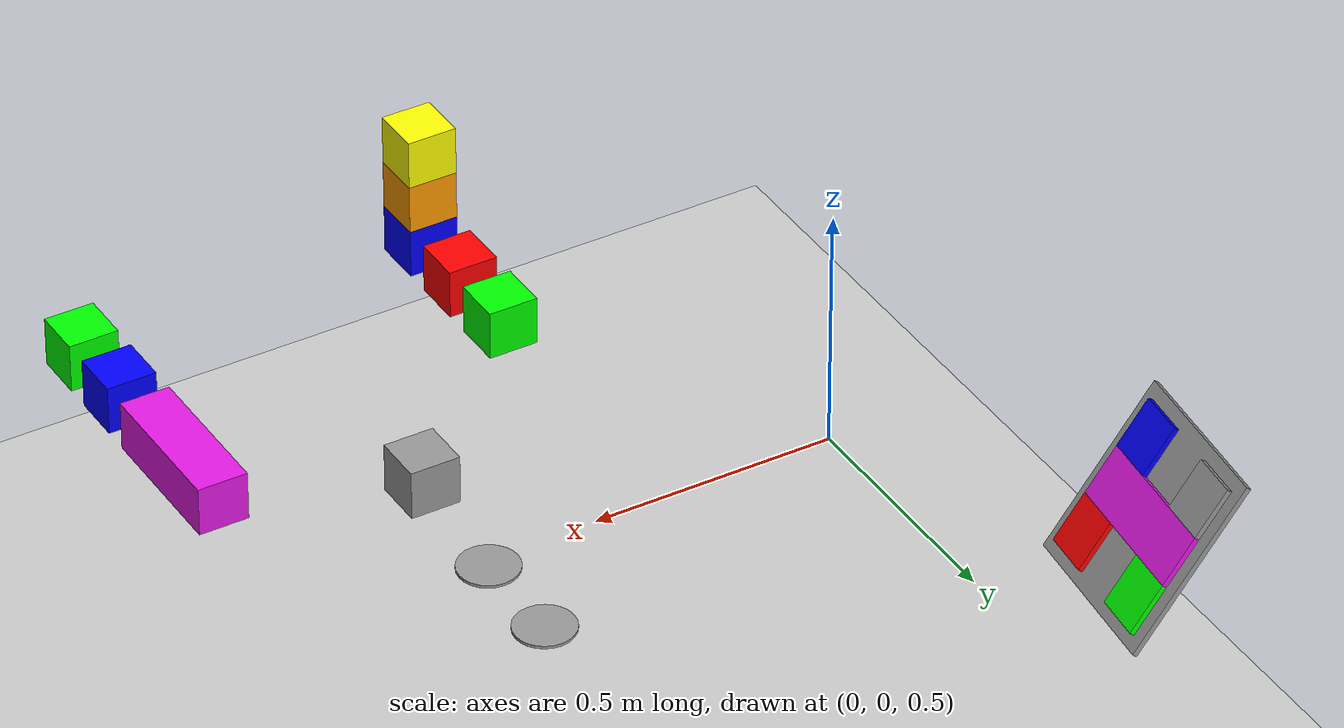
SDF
<sdf version="1.7">
 <world name="default">
  <plugin name="ros_link_attacher_plugin" filename="libgazebo_ros_link_attacher.so"/>
  <model name="set_camera_pose_model">
   <link name="link">
    <visual name="visual"><plugin name="CameraSimPlugin" filename="libCameraLockPlugin.so"/></visual>
   </link>
  </model>
  <gravity>0 0 -9.8</gravity>
  <magnetic_field>6e-06 2.3e-05 -4.2e-05</magnetic_field>
  <atmosphere type="adiabatic"/>
  <physics type="ode">
   <ode>
    <solver>
     <type>quick</type>
     <iters>50</iters>
     <sor>1.4</sor>
     <use_dynamic_moi_rescaling>0</use_dynamic_moi_rescaling>
    </solver>
    <constraints>
     <cfm>0</cfm>
     <erp>0.2</erp>
     <contact_max_correcting_vel>100</contact_max_correcting_vel>
     <contact_surface_layer>0</contact_surface_layer>
    </constraints>
   </ode>
   <real_time_update_rate>1000</real_time_update_rate>
   <max_step_size>0.002</max_step_size>
   <real_time_factor>1</real_time_factor>
   <gravity>0 0 -9.81</gravity>
  </physics>
  <spherical_coordinates>
   <surface_model>EARTH_WGS84</surface_model>
   <latitude_deg>0</latitude_deg>
   <longitude_deg>0</longitude_deg>
   <elevation>0</elevation>
   <heading_deg>0</heading_deg>
  </spherical_coordinates>
  <light name="sun" type="directional">
   <cast_shadows>0</cast_shadows>
   <pose>0 0 10 0 -0 0</pose>
   <diffuse>0.47 0.47 0.47 1</diffuse>
   <specular>0.2 0.2 0.2 1</specular>
   <attenuation>
    <range>1000</range>
    <constant>0.9</constant>
    <linear>0.01</linear>
    <quadratic>0.001</quadratic>
   </attenuation>
   <direction>-0.5 0.1 -0.9</direction>
   <spot><inner_angle>0</inner_angle><outer_angle>0</outer_angle><falloff>0</falloff></spot>
  </light>
  <scene><ambient>0.47 0.47 0.47 1</ambient><background>0 0 0 1</background><shadows>0</shadows></scene>
  <include><uri>model://ground_plane</uri></include>
  <model name="g1">
   <link name="link">
    <inertial>
     <mass>0.00001</mass>
     <inertia><ixx>0.00001</ixx><ixy>0</ixy><ixz>0</ixz><iyy>0.00001</iyy><iyz>0</iyz><izz>0.00001</izz></inertia>
    </inertial>
    <gravity>0</gravity>
    <visual name="visual">
     <geometry><box><size>0.1 0.1 0.1</size></box></geometry>
     <material>
      <lighting>1</lighting>
      <script><uri>file://media/materials/scripts/gazebo.material</uri><name>Gazebo/Grey</name></script>
      <shader type="pixel"><normal_map>__default__</normal_map></shader>
      <ambient>0 1 0 1</ambient>
      <diffuse>0.7 0.7 0.7 1</diffuse>
      <specular>0.01 0.01 0.01 1</specular>
      <emissive>0 0 0 1</emissive>
     </material>
     <cast_shadows>0</cast_shadows>
    </visual>
   </link>
   <static>0</static>
   <pose>0.5 -0.35 0.75 0 -0 0</pose>
  </model>
  <model name="r1">
   <link name="link">
    <inertial>
     <mass>0.00001</mass>
     <inertia><ixx>0.00001</ixx><ixy>0</ixy><ixz>0</ixz><iyy>0.00001</iyy><iyz>0</iyz><izz>0.00001</izz></inertia>
    </inertial>
    <gravity>0</gravity>
    <visual name="visual">
     <geometry><box><size>0.1 0.1 0.1</size></box></geometry>
     <material>
      <lighting>1</lighting>
      <script><uri>file://media/materials/scripts/gazebo.material</uri><name>Gazebo/Grey</name></script>
      <shader type="pixel"><normal_map>__default__</normal_map></shader>
      <ambient>1 0 0 1</ambient>
      <diffuse>0.7 0.7 0.7 1</diffuse>
      <specular>0.01 0.01 0.01 1</specular>
      <emissive>0 0 0 1</emissive>
     </material>
     <cast_shadows>0</cast_shadows>
    </visual>
   </link>
   <static>0</static>
   <pose>0.5 -0.5 0.75 0 -0 0</pose>
  </model>
  <model name="b1">
   <link name="link">
    <inertial>
     <mass>0.00001</mass>
     <inertia><ixx>0.00001</ixx><ixy>0</ixy><ixz>0</ixz><iyy>0.00001</iyy><iyz>0</iyz><izz>0.00001</izz></inertia>
    </inertial>
    <gravity>0</gravity>
    <visual name="visual">
     <geometry><box><size>0.1 0.1 0.1</size></box></geometry>
     <material>
      <lighting>1</lighting>
      <script><uri>file://media/materials/scripts/gazebo.material</uri><name>Gazebo/Grey</name></script>
      <shader type="pixel"><normal_map>__default__</normal_map></shader>
      <ambient>0 0 1 1</ambient>
      <diffuse>0.7 0.7 0.7 1</diffuse>
      <specular>0.01 0.01 0.01 1</specular>
      <emissive>0 0 0 1</emissive>
     </material>
     <cast_shadows>0</cast_shadows>
    </visual>
   </link>
   <static>0</static>
   <pose>0.5 -0.65 0.75 0 -0 0</pose>
  </model>
  <model name="o1">
   <link name="link">
    <inertial>
     <mass>0.00001</mass>
     <inertia><ixx>0.00001</ixx><ixy>0</ixy><ixz>0</ixz><iyy>0.00001</iyy><iyz>0</iyz><izz>0.00001</izz></inertia>
    </inertial>
    <gravity>0</gravity>
    <visual name="visual">
     <geometry><box><size>0.1 0.1 0.1</size></box></geometry>
     <material>
      <lighting>1</lighting>
      <script><uri>file://media/materials/scripts/gazebo.material</uri><name>Gazebo/Grey</name></script>
      <shader type="pixel"><normal_map>__default__</normal_map></shader>
      <ambient>1 0.6 0 1</ambient>
      <diffuse>0.7 0.7 0.7 1</diffuse>
      <specular>0.01 0.01 0.01 1</specular>
      <emissive>0 0 0 1</emissive>
     </material>
     <cast_shadows>0</cast_shadows>
    </visual>
   </link>
   <static>0</static>
   <pose>0.5 -0.65 0.85 0 -0 0</pose>
  </model>
  <model name="y1">
   <link name="link">
    <inertial>
     <mass>0.00001</mass>
     <inertia><ixx>0.00001</ixx><ixy>0</ixy><ixz>0</ixz><iyy>0.00001</iyy><iyz>0</iyz><izz>0.00001</izz></inertia>
    </inertial>
    <gravity>0</gravity>
    <visual name="visual">
     <geometry><box><size>0.1 0.1 0.1</size></box></geometry>
     <material>
      <lighting>1</lighting>
      <script><uri>file://media/materials/scripts/gazebo.material</uri><name>Gazebo/Grey</name></script>
      <shader type="pixel"><normal_map>__default__</normal_map></shader>
      <ambient>1 1 0 1</ambient>
      <diffuse>0.7 0.7 0.7 1</diffuse>
      <specular>0.01 0.01 0.01 1</specular>
      <emissive>0 0 0 1</emissive>
     </material>
     <cast_shadows>0</cast_shadows>
    </visual>
   </link>
   <static>0</static>
   <pose>0.5 -0.65 0.95 0 -0 0</pose>
  </model>
  <model name="w1">
   <link name="link">
    <inertial>
     <mass>1</mass>
     <inertia>
      <ixx>0.166667</ixx>
      <ixy>0</ixy>
      <ixz>0</ixz>
      <iyy>0.166667</iyy>
      <iyz>0</iyz>
      <izz>0.166667</izz>
     </inertia>
    </inertial>
    <gravity>0</gravity>
    <visual name="visual">
     <geometry><box><size>0.1 0.1 0.1</size></box></geometry>
     <material>
      <script><name>Gazebo/Grey</name><uri>file://media/materials/scripts/gazebo.material</uri></script>
      <shader type="pixel"><normal_map>__default__</normal_map></shader>
      <ambient>1 1 1 1</ambient>
      <diffuse>0.7 0.7 0.7 1</diffuse>
      <specular>0.1 0.1 0.1 1</specular>
      <emissive>0 0 0 1</emissive>
     </material>
     <cast_shadows>0</cast_shadows>
    </visual>
   </link>
   <static>0</static>
   <pose>0.86 0.0 0.75 0 -0 0</pose>
  </model>
  <model name="g2">
   <link name="link">
    <inertial>
     <mass>0.00001</mass>
     <inertia><ixx>0.00001</ixx><ixy>0</ixy><ixz>0</ixz><iyy>0.00001</iyy><iyz>0</iyz><izz>0.00001</izz></inertia>
    </inertial>
    <gravity>0</gravity>
    <visual name="visual">
     <geometry><box><size>0.1 0.1 0.1</size></box></geometry>
     <material>
      <lighting>1</lighting>
      <script><uri>file://media/materials/scripts/gazebo.material</uri><name>Gazebo/Grey</name></script>
      <shader type="pixel"><normal_map>__default__</normal_map></shader>
      <ambient>0 1 0 1</ambient>
      <diffuse>0.7 0.7 0.7 1</diffuse>
      <specular>0.01 0.01 0.01 1</specular>
      <emissive>0 0 0 1</emissive>
     </material>
     <cast_shadows>0</cast_shadows>
    </visual>
   </link>
   <static>0</static>
   <pose>1.21 -0.65 0.75 0 -0 0</pose>
  </model>
  <model name="b2">
   <link name="link">
    <inertial>
     <mass>1</mass>
     <inertia>
      <ixx>0.166667</ixx>
      <ixy>0</ixy>
      <ixz>0</ixz>
      <iyy>0.166667</iyy>
      <iyz>0</iyz>
      <izz>0.166667</izz>
     </inertia>
    </inertial>
    <gravity>0</gravity>
    <visual name="visual">
     <geometry><box><size>0.1 0.1 0.1</size></box></geometry>
     <material>
      <script><name>Gazebo/Grey</name><uri>file://media/materials/scripts/gazebo.material</uri></script>
      <shader type="pixel"><normal_map>__default__</normal_map></shader>
      <ambient>0 0 1 1</ambient>
      <diffuse>0.7 0.7 0.7 1</diffuse>
      <specular>0.1 0.1 0.1 1</specular>
      <emissive>0 0 0 1</emissive>
     </material>
     <cast_shadows>0</cast_shadows>
    </visual>
   </link>
   <static>0</static>
   <pose>1.21 -0.5 0.75 0 -0 0</pose>
  </model>
  <model name="p1">
   <link name="link">
    <inertial>
     <mass>1</mass>
     <inertia>
      <ixx>0.166667</ixx>
      <ixy>0</ixy>
      <ixz>0</ixz>
      <iyy>0.166667</iyy>
      <iyz>0</iyz>
      <izz>0.166667</izz>
     </inertia>
    </inertial>
    <gravity>0</gravity>
    <visual name="visual">
     <geometry><box><size>0.1 0.3 0.1</size></box></geometry>
     <material>
      <lighting>1</lighting>
      <script><uri>file://media/materials/scripts/gazebo.material</uri><name>Gazebo/Grey</name></script>
      <shader type="pixel"><normal_map>__default__</normal_map></shader>
      <ambient>0.9 0.1 0.9 1</ambient>
      <diffuse>0.7 0.7 0.7 1</diffuse>
      <specular>0.01 0.01 0.01 1</specular>
      <emissive>0 0 0 1</emissive>
     </material>
     <cast_shadows>0</cast_shadows>
    </visual>
   </link>
   <static>0</static>
   <pose>1.21 -0.25 0.75 0 -0 0</pose>
  </model>
  <model name="goal">
   <link name="g_r1">
    <inertial>
     <mass>0.00001</mass>
     <inertia><ixx>0.00001</ixx><ixy>0</ixy><ixz>0</ixz><iyy>0.00001</iyy><iyz>0</iyz><izz>0.00001</izz></inertia>
    </inertial>
    <gravity>0</gravity>
    <visual name="visual">
     <geometry><box><size>0.01 0.1 0.1</size></box></geometry>
     <material>
      <lighting>1</lighting>
      <script><uri>file://media/materials/scripts/gazebo.material</uri><name>Gazebo/Grey</name></script>
      <shader type="pixel"><normal_map>__default__</normal_map></shader>
      <ambient>1 0 0 1</ambient>
      <diffuse>0.7 0.7 0.7 1</diffuse>
      <specular>0.01 0.01 0.01 1</specular>
      <emissive>0 0 0 1</emissive>
     </material>
     <cast_shadows>0</cast_shadows>
    </visual>
   </link>
   <link name="g_g1">
    <inertial>
     <mass>0.00001</mass>
     <inertia><ixx>0.00001</ixx><ixy>0</ixy><ixz>0</ixz><iyy>0.00001</iyy><iyz>0</iyz><izz>0.00001</izz></inertia>
    </inertial>
    <pose>0 0.2 0 0 -0 0</pose>
    <gravity>0</gravity>
    <visual name="visual">
     <geometry><box><size>0.01 0.1 0.1</size></box></geometry>
     <material>
      <lighting>1</lighting>
      <script><uri>file://media/materials/scripts/gazebo.material</uri><name>Gazebo/Grey</name></script>
      <shader type="pixel"><normal_map>__default__</normal_map></shader>
      <ambient>0 1 0 1</ambient>
      <diffuse>0.7 0.7 0.7 1</diffuse>
      <specular>0.01 0.01 0.01 1</specular>
      <emissive>0 0 0 1</emissive>
     </material>
     <cast_shadows>0</cast_shadows>
    </visual>
   </link>
   <link name="g_p1">
    <inertial>
     <mass>1</mass>
     <inertia>
      <ixx>0.166667</ixx>
      <ixy>0</ixy>
      <ixz>0</ixz>
      <iyy>0.166667</iyy>
      <iyz>0</iyz>
      <izz>0.166667</izz>
     </inertia>
    </inertial>
    <pose>0 0.1 0.1 0 -0 0</pose>
    <gravity>0</gravity>
    <visual name="visual">
     <geometry><box><size>0.01 0.3 0.1</size></box></geometry>
     <material>
      <lighting>1</lighting>
      <script><uri>file://media/materials/scripts/gazebo.material</uri><name>Gazebo/Grey</name></script>
      <shader type="pixel"><normal_map>__default__</normal_map></shader>
      <ambient>0.9 0.1 0.9 1</ambient>
      <diffuse>0.7 0.7 0.7 1</diffuse>
      <specular>0.01 0.01 0.01 1</specular>
      <emissive>0 0 0 1</emissive>
     </material>
     <cast_shadows>0</cast_shadows>
    </visual>
   </link>
   <link name="g_b1">
    <inertial>
     <mass>0.00001</mass>
     <inertia><ixx>0.00001</ixx><ixy>0</ixy><ixz>0</ixz><iyy>0.00001</iyy><iyz>0</iyz><izz>0.00001</izz></inertia>
    </inertial>
    <pose>0 0 0.2 0 -0 0</pose>
    <gravity>0</gravity>
    <visual name="visual">
     <geometry><box><size>0.01 0.1 0.1</size></box></geometry>
     <material>
      <lighting>1</lighting>
      <script><uri>file://media/materials/scripts/gazebo.material</uri><name>Gazebo/Grey</name></script>
      <shader type="pixel"><normal_map>__default__</normal_map></shader>
      <ambient>0 0 1 1</ambient>
      <diffuse>0.7 0.7 0.7 1</diffuse>
      <specular>0.01 0.01 0.01 1</specular>
      <emissive>0 0 0 1</emissive>
     </material>
     <cast_shadows>0</cast_shadows>
    </visual>
   </link>
   <link name="g_w1">
    <inertial>
     <mass>1</mass>
     <inertia>
      <ixx>0.166667</ixx>
      <ixy>0</ixy>
      <ixz>0</ixz>
      <iyy>0.166667</iyy>
      <iyz>0</iyz>
      <izz>0.166667</izz>
     </inertia>
    </inertial>
    <pose>0 0.2 0.2 0 -0 0</pose>
    <gravity>0</gravity>
    <visual name="visual">
     <geometry><box><size>0.01 0.1 0.1</size></box></geometry>
     <material>
      <script><name>Gazebo/Grey</name><uri>file://media/materials/scripts/gazebo.material</uri></script>
      <shader type="pixel"><normal_map>__default__</normal_map></shader>
      <ambient>1 1 1 1</ambient>
      <diffuse>0.7 0.7 0.7 1</diffuse>
      <specular>0.1 0.1 0.1 1</specular>
      <emissive>0 0 0 1</emissive>
     </material>
     <cast_shadows>0</cast_shadows>
    </visual>
   </link>
   <link name="g_background">
    <inertial>
     <mass>1</mass>
     <inertia>
      <ixx>0.166667</ixx>
      <ixy>0</ixy>
      <ixz>0</ixz>
      <iyy>0.166667</iyy>
      <iyz>0</iyz>
      <izz>0.166667</izz>
     </inertia>
    </inertial>
    <pose>-0.01 0.1 0.1 0 -0 0</pose>
    <gravity>0</gravity>
    <visual name="visual">
     <geometry><box><size>0.01 0.35 0.35</size></box></geometry>
     <material>
      <script><name>Gazebo/Grey</name><uri>file://media/materials/scripts/gazebo.material</uri></script>
      <shader type="pixel"><normal_map>__default__</normal_map></shader>
      <ambient>0.6 0.6 0.6 1</ambient>
      <diffuse>0.7 0.7 0.7 1</diffuse>
      <specular>0.1 0.1 0.1 1</specular>
      <emissive>0 0 0 1</emissive>
     </material>
     <cast_shadows>0</cast_shadows>
    </visual>
   </link>
   <static>1</static>
   <pose>0.19 1.12 1.1 0.0532 -0.6259 -0.162</pose>
  </model>
  <model name="table_slot">
   <link name="link">
    <inertial>
     <mass>1</mass>
     <inertia><ixx>0.145833</ixx><ixy>0</ixy><ixz>0</ixz><iyy>0.145833</iyy><iyz>0</iyz><izz>0.125</izz></inertia>
    </inertial>
    <gravity>0</gravity>
    <visual name="visual">
     <geometry><cylinder><radius>0.06</radius><length>0.005709</length></cylinder></geometry>
     <material>
      <script><name>Gazebo/Grey</name><uri>file://media/materials/scripts/gazebo.material</uri></script>
      <shader type="pixel"><normal_map>__default__</normal_map></shader>
      <diffuse>0.5 0.5 0.5 1</diffuse>
      <ambient>0.3 0.3 0.3 1</ambient>
      <specular>0.01 0.01 0.01 1</specular>
      <emissive>0 0 0 1</emissive>
     </material>
     <cast_shadows>0</cast_shadows>
    </visual>
   </link>
   <static>0</static>
   <pose>0.86 0.24 0.7 0 -0 0</pose>
  </model>
  <model name="table_slot_0">
   <link name="link">
    <inertial>
     <mass>1</mass>
     <inertia><ixx>0.145833</ixx><ixy>0</ixy><ixz>0</ixz><iyy>0.145833</iyy><iyz>0</iyz><izz>0.125</izz></inertia>
    </inertial>
    <gravity>0</gravity>
    <visual name="visual">
     <geometry><cylinder><radius>0.06</radius><length>0.005709</length></cylinder></geometry>
     <material>
      <script><name>Gazebo/Grey</name><uri>file://media/materials/scripts/gazebo.material</uri></script>
      <shader type="pixel"><normal_map>__default__</normal_map></shader>
      <diffuse>0.5 0.5 0.5 1</diffuse>
      <ambient>0.3 0.3 0.3 1</ambient>
      <specular>0.01 0.01 0.01 1</specular>
      <emissive>0 0 0 1</emissive>
     </material>
     <cast_shadows>0</cast_shadows>
    </visual>
   </link>
   <static>0</static>
   <pose>0.86 0.44 0.7 0 -0 0</pose>
  </model>
 </world>
</sdf>
